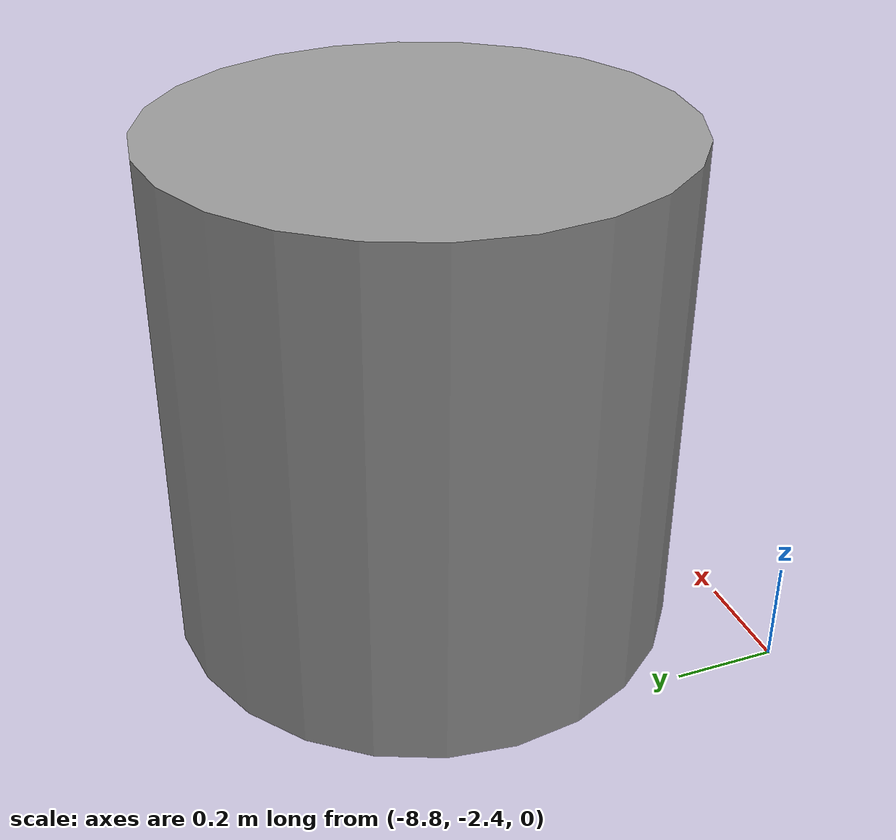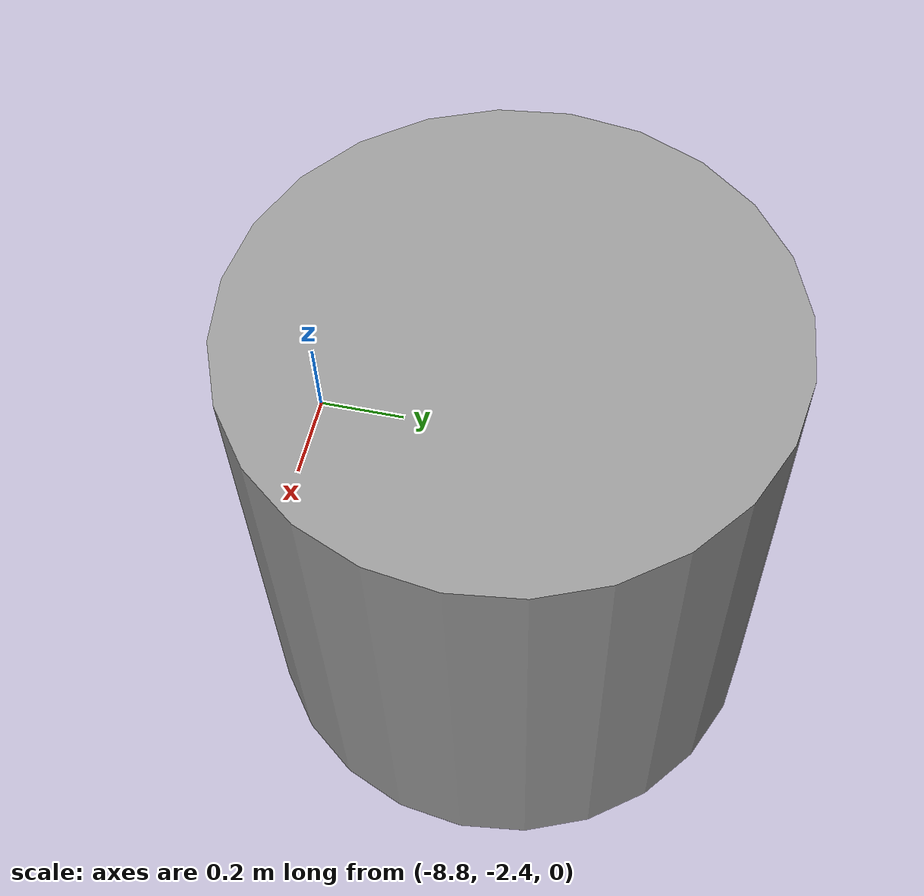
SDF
<sdf version="1.7">
 <world name="version_car_large_test_field">
  <model name="unit_cylinder">
   <static>1</static>
   <pose>-8.35501 -1.84019 0.499995 2.7e-05 1e-05 0.000238</pose>
   <link name="link">
    <inertial>
     <mass>1</mass>
     <inertia><ixx>0.145833</ixx><ixy>0</ixy><ixz>0</ixz><iyy>0.145833</iyy><iyz>0</iyz><izz>0.125</izz></inertia>
    </inertial>
    <collision name="collision">
     <geometry><cylinder><radius>0.5</radius><length>1</length></cylinder></geometry>
    </collision>
    <visual name="visual">
     <geometry><cylinder><radius>0.5</radius><length>1</length></cylinder></geometry>
     <material>
      <script><name>Gazebo/Grey</name><uri>file://media/materials/scripts/gazebo.material</uri></script>
     </material>
    </visual>
   </link>
  </model>
 </world>
</sdf>
